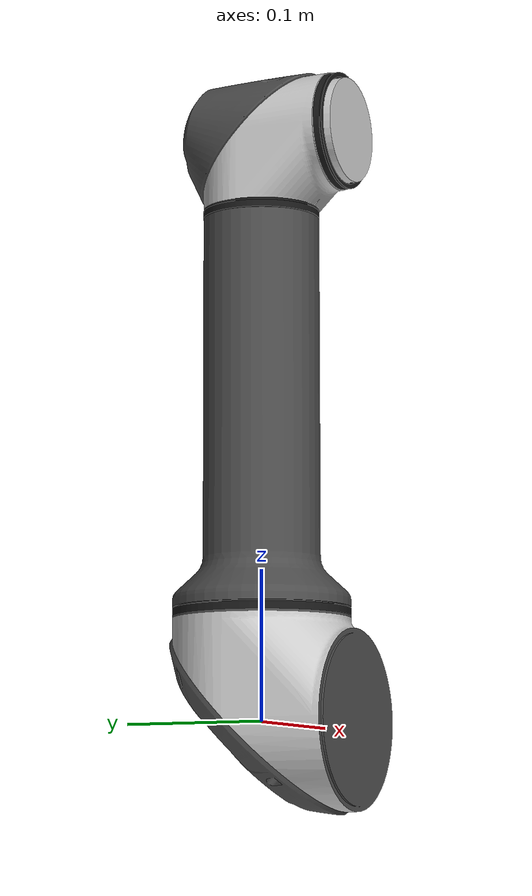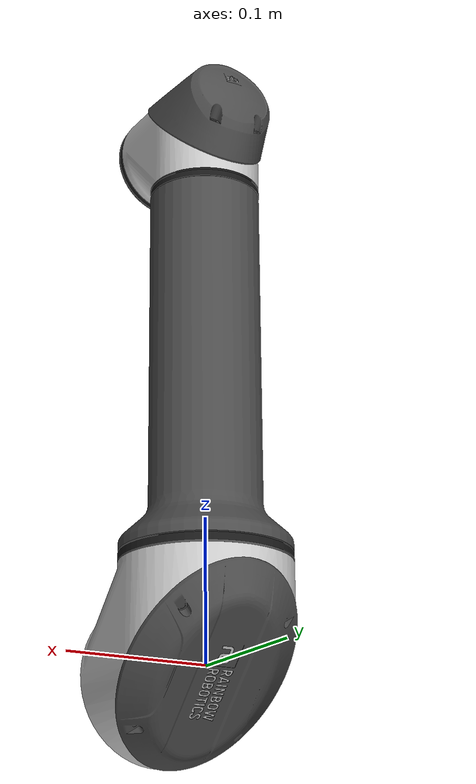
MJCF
<mujoco model="link3">
  <default>
    <default class="visual">
      <geom group="2" type="mesh" contype="0" conaffinity="0"/>
    </default>
    <default class="collision">
      <geom group="3" type="mesh"/>
    </default>
  </default>
  <asset>
    <material name="153,153,153_1" specular="0.5" shininess="0.5" rgba="0.3 0.3 0.3 1"/>
    <material name="64,64,64_2" specular="0.5" shininess="0.5" rgba="0.1 0.1 0.1 1"/>
    <material name="204,204,204" specular="0.5" shininess="0.5" rgba="0.1 0.1 0.1 1"/>
    <material name="244,244,244" specular="0.5" shininess="0.5" rgba="0.8 0.8 0.8 1"/>
    <material name="125,125,125" specular="0.5" shininess="0.5" rgba="0.3 0.3 0.3 1"/>
    <material name="0,153,255_3" specular="0.5" shininess="0.5" rgba="0.8 0.8 0.8 1"/>
    <material name="128,162,180" specular="0.5" shininess="0.5" rgba="0.3 0.3 0.3 1"/>
    <material name="Material.002" specular="0.5" shininess="0.5" rgba="0.8 0.8 0.8 1"/>
    <material name="Material.003" specular="0.5" shininess="0.5" rgba="0.8 0.8 0.8 1"/>
    <mesh file="link3_0.obj"/>
    <mesh file="link3_1.obj"/>
    <mesh file="link3_2.obj"/>
    <mesh file="link3_3.obj"/>
    <mesh file="link3_4.obj"/>
    <mesh file="link3_5.obj"/>
    <mesh file="link3_6.obj"/>
    <mesh file="link3_7.obj"/>
    <mesh file="link3_8.obj"/>
  </asset>
  <worldbody>
    <body name="link3">
      <geom mesh="link3_0" material="Material.003" class="visual"/>
      <geom mesh="link3_1" material="Material.002" class="visual"/>
      <geom mesh="link3_2" material="128,162,180" class="visual"/>
      <geom mesh="link3_3" material="0,153,255_3" class="visual"/>
      <geom mesh="link3_4" material="125,125,125" class="visual"/>
      <geom mesh="link3_5" material="244,244,244" class="visual"/>
      <geom mesh="link3_6" material="204,204,204" class="visual"/>
      <geom mesh="link3_7" material="64,64,64_2" class="visual"/>
      <geom mesh="link3_8" material="153,153,153_1" class="visual"/>
      <geom mesh="link3_0" class="collision"/>
      <geom mesh="link3_1" class="collision"/>
      <geom mesh="link3_2" class="collision"/>
      <geom mesh="link3_3" class="collision"/>
      <geom mesh="link3_4" class="collision"/>
      <geom mesh="link3_5" class="collision"/>
      <geom mesh="link3_6" class="collision"/>
      <geom mesh="link3_7" class="collision"/>
      <geom mesh="link3_8" class="collision"/>
    </body>
  </worldbody>
</mujoco>
